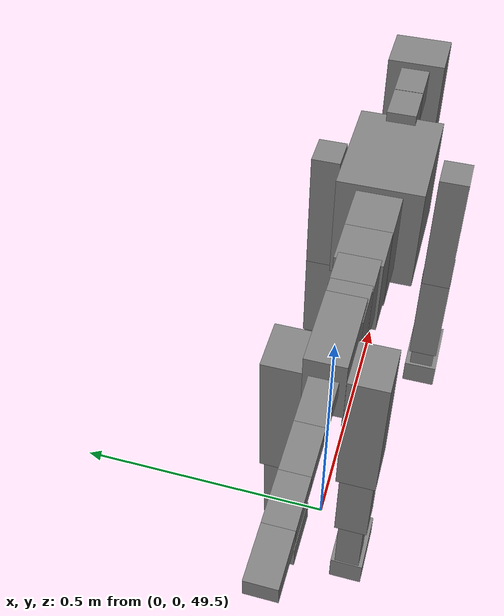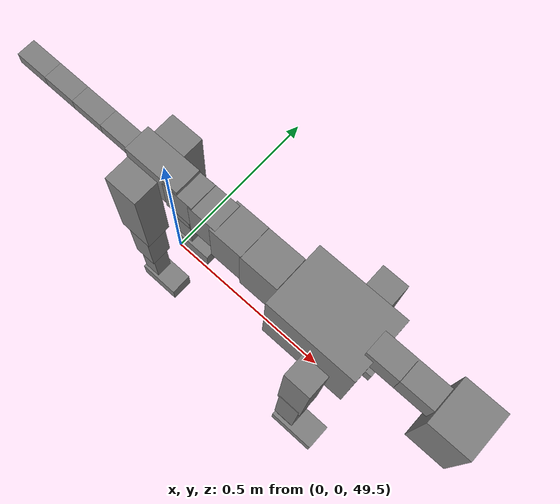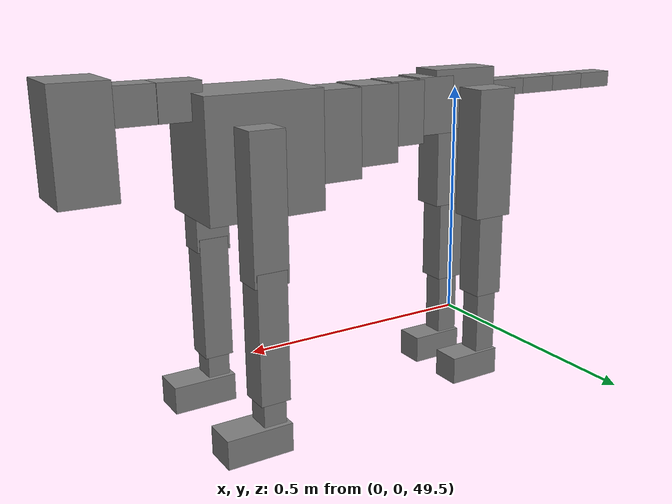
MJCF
<mujoco model="dog">

    <default>
        <joint armature="0.02" stiffness="1" damping="0.2" limited="true"/>
        <geom condim="3" friction="1 0.05 0.05" margin="0.01"/>
        <motor ctrllimited="true" ctrlrange="-1.0 1.0" forcelimited="true" gear="50"/>
    </default>

    <compiler inertiafromgeom="true" angle="radian"/>

    <option timestep="0.016" iterations="50" tolerance="1e-10" solver="Newton" jacobian="dense" cone="pyramidal"/>

    <size nconmax="20000" njmax="60000" nstack="5000000"/>
    <visual>
        <map force="0.1" zfar="30"/>
        <rgba haze="0.15 0.25 0.35 1"/>
        <quality shadowsize="2048"/>
        <global offwidth="800" offheight="800"/>
    </visual>

    <asset>
        <texture type="skybox" builtin="gradient" rgb1="0.3 0.5 0.7" rgb2="0 0 0" width="512" height="512"/>
        <texture name="texplane" type="2d" builtin="checker" rgb1=".2 .3 .4" rgb2=".1 0.15 0.2" width="512" height="512"
                 mark="cross" markrgb=".8 .8 .8"/>
        <texture name="texgeom" type="cube" builtin="flat" mark="cross" width="127" height="1278" rgb1="0.8 0.6 0.4"
                 rgb2="0.8 0.6 0.4" markrgb="1 1 1" random="0.01"/>

        <material name="matplane" reflectance="0.3" texture="texplane" texrepeat="1 1" texuniform="true"/>
        <material name="matgeom" texture="texgeom" texuniform="true" rgba="0.8 0.6 .4 1"/>
    </asset>

    <worldbody>
        <geom name="floor" pos="0 0 0" size="0 0 .25" type="plane" material="matplane" condim="3"/>

        <light directional="false" diffuse=".2 .2 .2" specular="0 0 0" pos="0 0 5" dir="0 0 -1" castshadow="false"/>
        <light mode="targetbodycom" target="torso" directional="false" diffuse=".8 .8 .8" specular="0.3 0.3 0.3"
               pos="0 0 4.0" dir="0 0 -1"/>

        <body name="root" pos="0 0 50">
            <freejoint name="root_1"/>
            <geom type="box" pos="0 0 -0.02" size="0.0774  0.0358  0.063" density="2030"/>

            <body name="spine1" pos="0.054 0 0">
                <joint name="spine1_y" axis="0 1 0" range="0 0.7" limited="true"/>
                <geom type="box" pos="0.02375 0 -0.03" size="0.04375  0.0375  0.05985" density="2030"/>

                <body name="spine2" pos="0.0612 0 0">
                    <joint name="spine2_y" axis="0 1 0" range="-0.15 0.15" limited="true"/>
                    <geom type="box" pos="0.03555  0  -0.04" size="0.04055  0.039  0.06615" density="2030"/>

                    <body name="spine3" pos="0.0730 0 0">
                        <joint name="spine3_y" axis="0 1 0" range="-0.15 0.15" limited="true"/>
                        <geom type="box" pos="0.03555  0  -0.057" size="0.04555  0.0445  0.081" density="2030"/>

                        <body name="spine4" pos="0.0780 0 0">
                            <joint name="spine4_y" axis="0 1 0" range="-0.15 0.15" limited="true"/>
                            <geom type="box" pos="0.05265  0  -0.07" size="0.05265  0.045  0.09135" density="2030"/>

                            <body name="torso" pos="0.1082 0 0">
                                <joint name="torso_y" axis="0 1 0" range="-0.15 0.15" limited="true"/>
                                <geom type="box" pos="0.11925  0  -0.085" size="0.11925  0.085  0.11745"
                                      density="2030"/>

                                <body name="neck1" pos="0.2160  0   0.0180">
                                    <joint name="neck1_y" axis="0 1 0" range="-1.2  -1" limited="true"/>
                                    <geom type="box" pos="0.0423  0  0" size="0.0423  0.03  0.036" density="2325"/>

                                    <body name="neck2" pos="0.0853  0  0">
                                        <joint name="neck2_y" axis="0 1 0" range="0.1  0" limited="true"/>
                                        <geom type="box" pos="0.0423  0  0" size="0.0423  0.03  0.036" density="2325"/>

                                        <body name="head" pos="0.0853  0  0">
                                            <joint name="head_y" axis="0 1 0" range="-0.3  -0.2" limited="true"/>
                                            <geom type="box" pos="0.0531  0  -0.055" size="0.0531  0.06  0.1044"
                                                  density="4030"/>

                                        </body>
                                    </body>
                                </body>

                                <body name="front_shoulder" pos="0.156  0   -0.0480">
                                    <joint name="front_shoulder_y" axis="0 1 0" range="-1 1.5" limited="true"/>
                                    <geom type="box" pos="0 0.13 -0.1154" size="0.0353  0.0302  0.1421" density="1158"/>
                                    <geom type="box" pos="0 -0.13 -0.1154" size="0.0353  0.0302  0.1421"
                                          density="1158"/>

                                    <body name="front_elbow" pos="0  0  -0.2308">
                                        <joint name="front_elbow_y" axis="0 1 0" range="-2 0" limited="true"/>
                                        <geom type="box" pos="0 0.13 -0.1292" size="0.0305  0.0312  0.1292"
                                              density="1081"/>
                                        <geom type="box" pos="0 -0.13 -0.1292" size="0.0305  0.0312  0.1292"
                                              density="1081"/>

                                        <body name="front_wrist" pos="0  0  -0.2584">
                                            <joint name="front_wrist_y" axis="0 1 0" range="-0.2 0" limited="true"/>
                                            <geom type="box" pos="0 0.13 -0.0307" size="0.0234  0.0260  0.0438"
                                                  density="1664"/>
                                            <geom type="box" pos="0 -0.13 -0.0307" size="0.0234  0.0260  0.0438"
                                                  density="1664"/>

                                            <body name="front_finger_end" pos="0  0  -0.0613">
                                                <joint name="front_finger_y" axis="0 1 0" range="-0.4 1"
                                                       limited="true"/>
                                                <geom type="box" pos="0.0367  0.13  -0.0142"
                                                      size="0.0673  0.0367  0.0292" density="1515"/>
                                                <geom type="box" pos="0.0367  -0.13  -0.0142"
                                                      size="0.0673  0.0367  0.0292" density="1515"/>

                                            </body>

                                        </body>
                                    </body>
                                </body>

                            </body>
                        </body>
                    </body>
                </body>
            </body>

            <body name="back_hip" pos="-0.03 0 -0.018">
                <joint name="back_hip_y" axis="0 1 0" range="-1.5 0.3" limited="true"/>
                <geom type="box" pos="0 0.07 -0.1150" size="0.0459  0.0360  0.1378" density="1154"/>
                <geom type="box" pos="0 -0.07 -0.1150" size="0.0459  0.0360  0.1378" density="1154"/>

                <body name="back_knee" pos="0  0  -0.2300">
                    <joint name="back_knee_y" axis="0 1 0" range="0 2.8" limited="true"/>
                    <geom type="box" pos="0 0.07 -0.0926" size="0.0318  0.0313  0.1082" density="1227"/>
                    <geom type="box" pos="0 -0.07 -0.0926" size="0.0318  0.0313  0.1082" density="1227"/>

                    <body name="back_ankle" pos="0  0  -0.1853">
                        <joint name="back_ankle_y" axis="0 1 0" range="-2.2 0" limited="true"/>
                        <geom type="box" pos="0 0.07 -0.0825" size="0.0244  0.0244  0.0938" density="1284"/>
                        <geom type="box" pos="0 -0.07 -0.0825" size="0.0244  0.0244  0.0938" density="1284"/>

                        <body name="back_toe_end" pos="0  0  -0.1650">
                            <joint name="back_toe_y" axis="0 1 0" range="-0.4 1" limited="true"/>
                            <geom type="box" pos="0.0323  0.07  -0.0147" size="0.0592  0.0323  0.0297" density="1515"/>
                            <geom type="box" pos="0.0323  -0.07  -0.0147" size="0.0592  0.0323  0.0297" density="1515"/>

                        </body>
                    </body>
                </body>
            </body>

            <body name="tail1" pos="-0.074 0 -0.006">
                <joint name="tail1_y" axis="0 1 0" range="-0.2 0.2" limited="true"/>
                <geom type="box" pos="-0.0536  0  0" size="0.045  0.025  0.0175" density="1587"/>

                <body name="tail2" pos="-0.09 0 0">
                    <joint name="tail2_y" axis="0 1 0" range="-0.2 0.2" limited="true"/>
                    <geom type="box" pos="-0.0536  0  0" size="0.045  0.025  0.0175" density="1587"/>

                    <body name="tail3" pos="-0.09 0 0">
                        <joint name="tail3_y" axis="0 1 0" range="-0.2 0.2" limited="true"/>
                        <geom type="box" pos="-0.0536  0  0" size="0.045  0.025  0.0175" density="1587"/>

                        <body name="tail4" pos="-0.09 0 0">
                            <joint name="tail4_y" axis="0 1 0" range="-0.2 0.2" limited="true"/>
                            <geom type="box" pos="-0.0536  0  0" size="0.045  0.025  0.0175" density="1587"/>

                        </body>
                    </body>
                </body>
            </body>
        </body>
    </worldbody>

    <actuator>
        <motor joint="spine1_y" forcerange="-150 150     "/>
        <motor joint="spine2_y" forcerange="-150 150     "/>
        <motor joint="spine3_y" forcerange="-150 150     "/>
        <motor joint="spine4_y" forcerange="-150 150     "/>
        <motor joint="torso_y" forcerange="-150 150     "/>
        <motor joint="neck1_y" forcerange="-100 100       "/>
        <motor joint="neck2_y" forcerange="-100 100       "/>
        <motor joint="head_y" forcerange="-150 150       "/>
        <motor joint="front_shoulder_y" forcerange="-187.53 113.73"/>
        <motor joint="front_elbow_y" forcerange="-170.99 155.79"/>
        <motor joint="front_wrist_y" forcerange="-136.84 71.48"/>
        <motor joint="front_finger_y" forcerange="-97.14 58.52"/>
        <motor joint="back_hip_y" forcerange="-383.96 295.55"/>
        <motor joint="back_knee_y" forcerange="-377.62 278.23"/>
        <motor joint="back_angle_y" forcerange="-87.04 202.60"/>
        <motor joint="back_toe_y" forcerange="-112.03 66.20"/>
        <motor joint="tail1_y" forcerange="-50 50     "/>
        <motor joint="tail2_y" forcerange="-50 50     "/>
        <motor joint="tail3_y" forcerange="-50 50     "/>
        <motor joint="tail4_y" forcerange="-50 50     "/>
    </actuator>
</mujoco>
